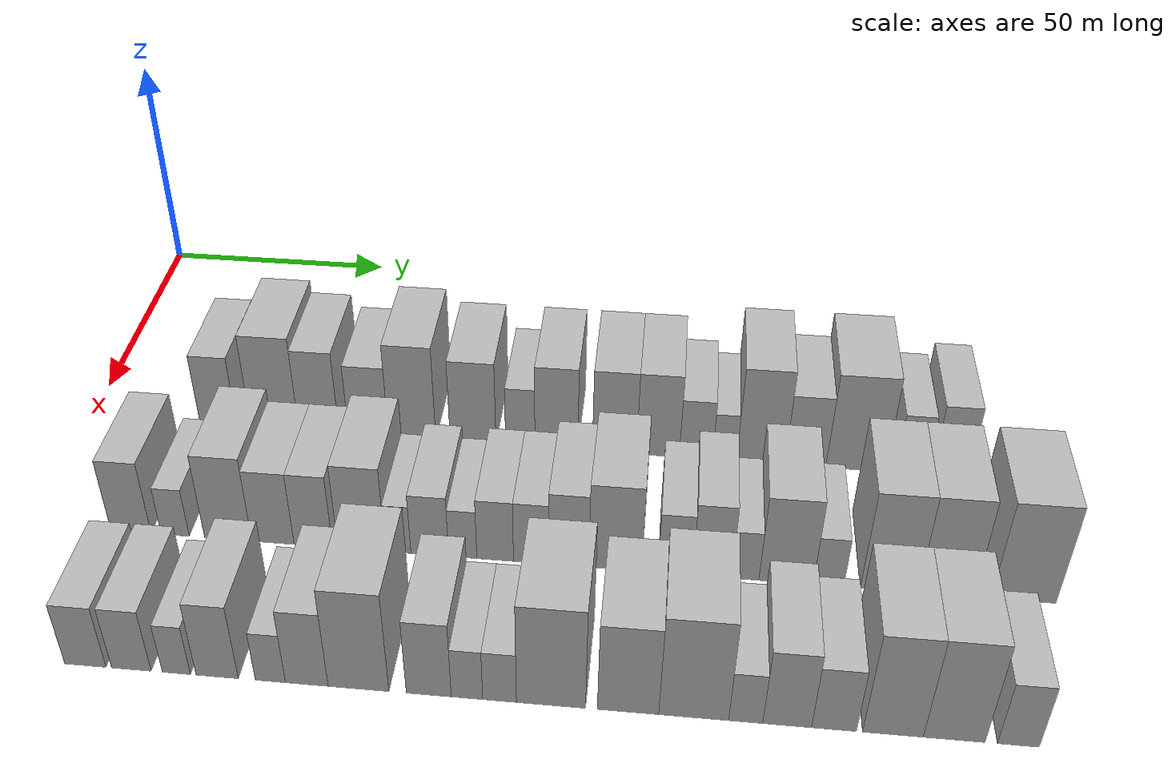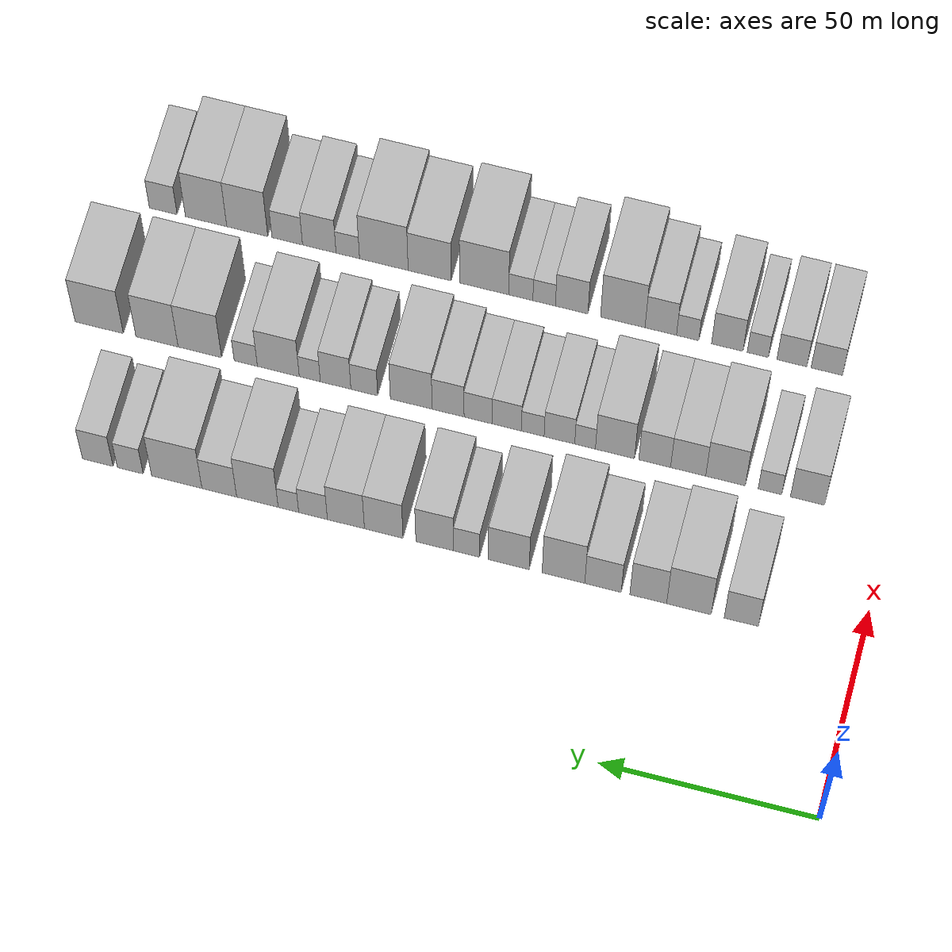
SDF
<sdf version="1.6">
 <world name="default">
  <model name="building_38">
   <static>1</static>
   <pose>50.0000 27.1432 0 0.000000 0.000000 0.000000</pose>
   <link name="link">
    <pose>0 0 9.00 0 0 0</pose>
    <collision name="collision"><geometry><box><size>20.0000 7.8603 18.0000</size></box></geometry></collision>
    <visual name="visual">
     <cast_shadows>0</cast_shadows>
     <geometry><box><size>20.0000 7.8603 18.0000</size></box></geometry>
     <material>
      <script>
       <uri>model://HANNAS_wall/materials/scripts</uri>
       <uri>model://HANNAS_wall/materials/textures</uri>
       <name>vrc/HANNAS_wall</name>
      </script>
     </material>
    </visual>
   </link>
  </model>
  <model name="building_39">
   <static>1</static>
   <pose>50.0000 39.2020 0 0.000000 0.000000 0.000000</pose>
   <link name="link">
    <pose>0 0 12.00 0 0 0</pose>
    <collision name="collision"><geometry><box><size>20.0000 10.2574 24.0000</size></box></geometry></collision>
    <visual name="visual">
     <cast_shadows>0</cast_shadows>
     <geometry><box><size>20.0000 10.2574 24.0000</size></box></geometry>
     <material>
      <script>
       <uri>model://HANNAS_wall/materials/scripts</uri>
       <uri>model://HANNAS_wall/materials/textures</uri>
       <name>vrc/HANNAS_wall</name>
      </script>
     </material>
    </visual>
   </link>
  </model>
  <model name="building_40">
   <static>1</static>
   <pose>50.0000 48.5770 0 0.000000 0.000000 0.000000</pose>
   <link name="link">
    <pose>0 0 10.50 0 0 0</pose>
    <collision name="collision"><geometry><box><size>20.0000 8.4925 21.0000</size></box></geometry></collision>
    <visual name="visual">
     <cast_shadows>0</cast_shadows>
     <geometry><box><size>20.0000 8.4925 21.0000</size></box></geometry>
     <material>
      <script>
       <uri>model://HANNAS_wall/materials/scripts</uri>
       <uri>model://HANNAS_wall/materials/textures</uri>
       <name>vrc/HANNAS_wall</name>
      </script>
     </material>
    </visual>
   </link>
  </model>
  <model name="building_41">
   <static>1</static>
   <pose>50.0000 59.0320 0 0.000000 0.000000 0.000000</pose>
   <link name="link">
    <pose>0 0 9.00 0 0 0</pose>
    <collision name="collision"><geometry><box><size>20.0000 8.4174 18.0000</size></box></geometry></collision>
    <visual name="visual">
     <cast_shadows>0</cast_shadows>
     <geometry><box><size>20.0000 8.4174 18.0000</size></box></geometry>
     <material>
      <script>
       <uri>model://HANNAS_wall/materials/scripts</uri>
       <uri>model://HANNAS_wall/materials/textures</uri>
       <name>vrc/HANNAS_wall</name>
      </script>
     </material>
    </visual>
   </link>
  </model>
  <model name="building_42">
   <static>1</static>
   <pose>50.0000 68.1837 0 0.000000 0.000000 0.000000</pose>
   <link name="link">
    <pose>0 0 12.00 0 0 0</pose>
    <collision name="collision"><geometry><box><size>20.0000 9.8862 24.0000</size></box></geometry></collision>
    <visual name="visual">
     <cast_shadows>0</cast_shadows>
     <geometry><box><size>20.0000 9.8862 24.0000</size></box></geometry>
     <material>
      <script>
       <uri>model://HANNAS_wall/materials/scripts</uri>
       <uri>model://HANNAS_wall/materials/textures</uri>
       <name>vrc/HANNAS_wall</name>
      </script>
     </material>
    </visual>
   </link>
  </model>
  <model name="building_43">
   <static>1</static>
   <pose>50.0000 80.8835 0 0.000000 0.000000 0.000000</pose>
   <link name="link">
    <pose>0 0 10.50 0 0 0</pose>
    <collision name="collision"><geometry><box><size>20.0000 9.5133 21.0000</size></box></geometry></collision>
    <visual name="visual">
     <cast_shadows>0</cast_shadows>
     <geometry><box><size>20.0000 9.5133 21.0000</size></box></geometry>
     <material>
      <script>
       <uri>model://HANNAS_wall/materials/scripts</uri>
       <uri>model://HANNAS_wall/materials/textures</uri>
       <name>vrc/HANNAS_wall</name>
      </script>
     </material>
    </visual>
   </link>
  </model>
  <model name="building_44">
   <static>1</static>
   <pose>50.0000 90.6628 0 0.000000 0.000000 0.000000</pose>
   <link name="link">
    <pose>0 0 7.50 0 0 0</pose>
    <collision name="collision"><geometry><box><size>20.0000 6.0455 15.0000</size></box></geometry></collision>
    <visual name="visual">
     <cast_shadows>0</cast_shadows>
     <geometry><box><size>20.0000 6.0455 15.0000</size></box></geometry>
     <material>
      <script>
       <uri>model://HANNAS_wall/materials/scripts</uri>
       <uri>model://HANNAS_wall/materials/textures</uri>
       <name>vrc/HANNAS_wall</name>
      </script>
     </material>
    </visual>
   </link>
  </model>
  <model name="building_45">
   <static>1</static>
   <pose>50.0000 98.0947 0 0.000000 0.000000 0.000000</pose>
   <link name="link">
    <pose>0 0 10.50 0 0 0</pose>
    <collision name="collision"><geometry><box><size>20.0000 8.8181 21.0000</size></box></geometry></collision>
    <visual name="visual">
     <cast_shadows>0</cast_shadows>
     <geometry><box><size>20.0000 8.8181 21.0000</size></box></geometry>
     <material>
      <script>
       <uri>model://HANNAS_wall/materials/scripts</uri>
       <uri>model://HANNAS_wall/materials/textures</uri>
       <name>vrc/HANNAS_wall</name>
      </script>
     </material>
    </visual>
   </link>
  </model>
  <model name="building_46">
   <static>1</static>
   <pose>50.0000 110.0140 0 0.000000 0.000000 0.000000</pose>
   <link name="link">
    <pose>0 0 10.50 0 0 0</pose>
    <collision name="collision"><geometry><box><size>20.0000 9.0205 21.0000</size></box></geometry></collision>
    <visual name="visual">
     <cast_shadows>0</cast_shadows>
     <geometry><box><size>20.0000 9.0205 21.0000</size></box></geometry>
     <material>
      <script>
       <uri>model://HANNAS_wall/materials/scripts</uri>
       <uri>model://HANNAS_wall/materials/textures</uri>
       <name>vrc/HANNAS_wall</name>
      </script>
     </material>
    </visual>
   </link>
  </model>
  <model name="building_47">
   <static>1</static>
   <pose>50.0000 118.8597 0 0.000000 0.000000 0.000000</pose>
   <link name="link">
    <pose>0 0 10.50 0 0 0</pose>
    <collision name="collision"><geometry><box><size>20.0000 8.6710 21.0000</size></box></geometry></collision>
    <visual name="visual">
     <cast_shadows>0</cast_shadows>
     <geometry><box><size>20.0000 8.6710 21.0000</size></box></geometry>
     <material>
      <script>
       <uri>model://HANNAS_wall/materials/scripts</uri>
       <uri>model://HANNAS_wall/materials/textures</uri>
       <name>vrc/HANNAS_wall</name>
      </script>
     </material>
    </visual>
   </link>
  </model>
  <model name="building_48">
   <static>1</static>
   <pose>50.0000 126.5667 0 0.000000 0.000000 0.000000</pose>
   <link name="link">
    <pose>0 0 7.50 0 0 0</pose>
    <collision name="collision"><geometry><box><size>20.0000 6.7429 15.0000</size></box></geometry></collision>
    <visual name="visual">
     <cast_shadows>0</cast_shadows>
     <geometry><box><size>20.0000 6.7429 15.0000</size></box></geometry>
     <material>
      <script>
       <uri>model://HANNAS_wall/materials/scripts</uri>
       <uri>model://HANNAS_wall/materials/textures</uri>
       <name>vrc/HANNAS_wall</name>
      </script>
     </material>
    </visual>
   </link>
  </model>
  <model name="building_49">
   <static>1</static>
   <pose>50.0000 132.3467 0 0.000000 0.000000 0.000000</pose>
   <link name="link">
    <pose>0 0 6.00 0 0 0</pose>
    <collision name="collision"><geometry><box><size>20.0000 4.8172 12.0000</size></box></geometry></collision>
    <visual name="visual">
     <cast_shadows>0</cast_shadows>
     <geometry><box><size>20.0000 4.8172 12.0000</size></box></geometry>
     <material>
      <script>
       <uri>model://HANNAS_wall/materials/scripts</uri>
       <uri>model://HANNAS_wall/materials/textures</uri>
       <name>vrc/HANNAS_wall</name>
      </script>
     </material>
    </visual>
   </link>
  </model>
  <model name="building_50">
   <static>1</static>
   <pose>50.0000 139.6357 0 0.000000 0.000000 0.000000</pose>
   <link name="link">
    <pose>0 0 12.00 0 0 0</pose>
    <collision name="collision"><geometry><box><size>20.0000 9.7607 24.0000</size></box></geometry></collision>
    <visual name="visual">
     <cast_shadows>0</cast_shadows>
     <geometry><box><size>20.0000 9.7607 24.0000</size></box></geometry>
     <material>
      <script>
       <uri>model://HANNAS_wall/materials/scripts</uri>
       <uri>model://HANNAS_wall/materials/textures</uri>
       <name>vrc/HANNAS_wall</name>
      </script>
     </material>
    </visual>
   </link>
  </model>
  <model name="building_51">
   <static>1</static>
   <pose>50.0000 148.6075 0 0.000000 0.000000 0.000000</pose>
   <link name="link">
    <pose>0 0 9.00 0 0 0</pose>
    <collision name="collision"><geometry><box><size>20.0000 8.1829 18.0000</size></box></geometry></collision>
    <visual name="visual">
     <cast_shadows>0</cast_shadows>
     <geometry><box><size>20.0000 8.1829 18.0000</size></box></geometry>
     <material>
      <script>
       <uri>model://HANNAS_wall/materials/scripts</uri>
       <uri>model://HANNAS_wall/materials/textures</uri>
       <name>vrc/HANNAS_wall</name>
      </script>
     </material>
    </visual>
   </link>
  </model>
  <model name="building_52">
   <static>1</static>
   <pose>50.0000 158.6310 0 0.000000 0.000000 0.000000</pose>
   <link name="link">
    <pose>0 0 12.00 0 0 0</pose>
    <collision name="collision"><geometry><box><size>20.0000 11.8640 24.0000</size></box></geometry></collision>
    <visual name="visual">
     <cast_shadows>0</cast_shadows>
     <geometry><box><size>20.0000 11.8640 24.0000</size></box></geometry>
     <material>
      <script>
       <uri>model://HANNAS_wall/materials/scripts</uri>
       <uri>model://HANNAS_wall/materials/textures</uri>
       <name>vrc/HANNAS_wall</name>
      </script>
     </material>
    </visual>
   </link>
  </model>
  <model name="building_53">
   <static>1</static>
   <pose>50.0000 169.6212 0 0.000000 0.000000 0.000000</pose>
   <link name="link">
    <pose>0 0 7.50 0 0 0</pose>
    <collision name="collision"><geometry><box><size>20.0000 6.1164 15.0000</size></box></geometry></collision>
    <visual name="visual">
     <cast_shadows>0</cast_shadows>
     <geometry><box><size>20.0000 6.1164 15.0000</size></box></geometry>
     <material>
      <script>
       <uri>model://HANNAS_wall/materials/scripts</uri>
       <uri>model://HANNAS_wall/materials/textures</uri>
       <name>vrc/HANNAS_wall</name>
      </script>
     </material>
    </visual>
   </link>
  </model>
  <model name="building_54">
   <static>1</static>
   <pose>50.0000 177.3063 0 0.000000 0.000000 0.000000</pose>
   <link name="link">
    <pose>0 0 9.00 0 0 0</pose>
    <collision name="collision"><geometry><box><size>20.0000 7.2539 18.0000</size></box></geometry></collision>
    <visual name="visual">
     <cast_shadows>0</cast_shadows>
     <geometry><box><size>20.0000 7.2539 18.0000</size></box></geometry>
     <material>
      <script>
       <uri>model://HANNAS_wall/materials/scripts</uri>
       <uri>model://HANNAS_wall/materials/textures</uri>
       <name>vrc/HANNAS_wall</name>
      </script>
     </material>
    </visual>
   </link>
  </model>
  <model name="building_107">
   <static>1</static>
   <pose>82.0000 19.3540 0 0.000000 0.000000 0.000000</pose>
   <link name="link">
    <pose>0 0 9.00 0 0 0</pose>
    <collision name="collision"><geometry><box><size>20.0000 7.9492 18.0000</size></box></geometry></collision>
    <visual name="visual">
     <cast_shadows>0</cast_shadows>
     <geometry><box><size>20.0000 7.9492 18.0000</size></box></geometry>
     <material>
      <script>
       <uri>model://HANNAS_wall/materials/scripts</uri>
       <uri>model://HANNAS_wall/materials/textures</uri>
       <name>vrc/HANNAS_wall</name>
      </script>
     </material>
    </visual>
   </link>
  </model>
  <model name="building_108">
   <static>1</static>
   <pose>82.0000 28.0753 0 0.000000 0.000000 0.000000</pose>
   <link name="link">
    <pose>0 0 6.00 0 0 0</pose>
    <collision name="collision"><geometry><box><size>20.0000 5.4935 12.0000</size></box></geometry></collision>
    <visual name="visual">
     <cast_shadows>0</cast_shadows>
     <geometry><box><size>20.0000 5.4935 12.0000</size></box></geometry>
     <material>
      <script>
       <uri>model://HANNAS_wall/materials/scripts</uri>
       <uri>model://HANNAS_wall/materials/textures</uri>
       <name>vrc/HANNAS_wall</name>
      </script>
     </material>
    </visual>
   </link>
  </model>
  <model name="building_109">
   <static>1</static>
   <pose>82.0000 38.4294 0 0.000000 0.000000 0.000000</pose>
   <link name="link">
    <pose>0 0 10.50 0 0 0</pose>
    <collision name="collision"><geometry><box><size>20.0000 9.2146 21.0000</size></box></geometry></collision>
    <visual name="visual">
     <cast_shadows>0</cast_shadows>
     <geometry><box><size>20.0000 9.2146 21.0000</size></box></geometry>
     <material>
      <script>
       <uri>model://HANNAS_wall/materials/scripts</uri>
       <uri>model://HANNAS_wall/materials/textures</uri>
       <name>vrc/HANNAS_wall</name>
      </script>
     </material>
    </visual>
   </link>
  </model>
  <model name="building_110">
   <static>1</static>
   <pose>82.0000 47.1405 0 0.000000 0.000000 0.000000</pose>
   <link name="link">
    <pose>0 0 9.00 0 0 0</pose>
    <collision name="collision"><geometry><box><size>20.0000 8.2077 18.0000</size></box></geometry></collision>
    <visual name="visual">
     <cast_shadows>0</cast_shadows>
     <geometry><box><size>20.0000 8.2077 18.0000</size></box></geometry>
     <material>
      <script>
       <uri>model://HANNAS_wall/materials/scripts</uri>
       <uri>model://HANNAS_wall/materials/textures</uri>
       <name>vrc/HANNAS_wall</name>
      </script>
     </material>
    </visual>
   </link>
  </model>
  <model name="building_111">
   <static>1</static>
   <pose>82.0000 54.9694 0 0.000000 0.000000 0.000000</pose>
   <link name="link">
    <pose>0 0 9.00 0 0 0</pose>
    <collision name="collision"><geometry><box><size>20.0000 7.4501 18.0000</size></box></geometry></collision>
    <visual name="visual">
     <cast_shadows>0</cast_shadows>
     <geometry><box><size>20.0000 7.4501 18.0000</size></box></geometry>
     <material>
      <script>
       <uri>model://HANNAS_wall/materials/scripts</uri>
       <uri>model://HANNAS_wall/materials/textures</uri>
       <name>vrc/HANNAS_wall</name>
      </script>
     </material>
    </visual>
   </link>
  </model>
  <model name="building_112">
   <static>1</static>
   <pose>82.0000 64.2688 0 0.000000 0.000000 0.000000</pose>
   <link name="link">
    <pose>0 0 10.50 0 0 0</pose>
    <collision name="collision"><geometry><box><size>20.0000 9.1488 21.0000</size></box></geometry></collision>
    <visual name="visual">
     <cast_shadows>0</cast_shadows>
     <geometry><box><size>20.0000 9.1488 21.0000</size></box></geometry>
     <material>
      <script>
       <uri>model://HANNAS_wall/materials/scripts</uri>
       <uri>model://HANNAS_wall/materials/textures</uri>
       <name>vrc/HANNAS_wall</name>
      </script>
     </material>
    </visual>
   </link>
  </model>
  <model name="building_113">
   <static>1</static>
   <pose>82.0000 71.2736 0 0.000000 0.000000 0.000000</pose>
   <link name="link">
    <pose>0 0 6.00 0 0 0</pose>
    <collision name="collision"><geometry><box><size>20.0000 4.8607 12.0000</size></box></geometry></collision>
    <visual name="visual">
     <cast_shadows>0</cast_shadows>
     <geometry><box><size>20.0000 4.8607 12.0000</size></box></geometry>
     <material>
      <script>
       <uri>model://HANNAS_wall/materials/scripts</uri>
       <uri>model://HANNAS_wall/materials/textures</uri>
       <name>vrc/HANNAS_wall</name>
      </script>
     </material>
    </visual>
   </link>
  </model>
  <model name="building_114">
   <static>1</static>
   <pose>82.0000 77.2960 0 0.000000 0.000000 0.000000</pose>
   <link name="link">
    <pose>0 0 7.50 0 0 0</pose>
    <collision name="collision"><geometry><box><size>20.0000 7.1841 15.0000</size></box></geometry></collision>
    <visual name="visual">
     <cast_shadows>0</cast_shadows>
     <geometry><box><size>20.0000 7.1841 15.0000</size></box></geometry>
     <material>
      <script>
       <uri>model://HANNAS_wall/materials/scripts</uri>
       <uri>model://HANNAS_wall/materials/textures</uri>
       <name>vrc/HANNAS_wall</name>
      </script>
     </material>
    </visual>
   </link>
  </model>
  <model name="building_115">
   <static>1</static>
   <pose>82.0000 83.5635 0 0.000000 0.000000 0.000000</pose>
   <link name="link">
    <pose>0 0 6.00 0 0 0</pose>
    <collision name="collision"><geometry><box><size>20.0000 5.3509 12.0000</size></box></geometry></collision>
    <visual name="visual">
     <cast_shadows>0</cast_shadows>
     <geometry><box><size>20.0000 5.3509 12.0000</size></box></geometry>
     <material>
      <script>
       <uri>model://HANNAS_wall/materials/scripts</uri>
       <uri>model://HANNAS_wall/materials/textures</uri>
       <name>vrc/HANNAS_wall</name>
      </script>
     </material>
    </visual>
   </link>
  </model>
  <model name="building_116">
   <static>1</static>
   <pose>82.0000 89.6961 0 0.000000 0.000000 0.000000</pose>
   <link name="link">
    <pose>0 0 7.50 0 0 0</pose>
    <collision name="collision"><geometry><box><size>20.0000 6.9144 15.0000</size></box></geometry></collision>
    <visual name="visual">
     <cast_shadows>0</cast_shadows>
     <geometry><box><size>20.0000 6.9144 15.0000</size></box></geometry>
     <material>
      <script>
       <uri>model://HANNAS_wall/materials/scripts</uri>
       <uri>model://HANNAS_wall/materials/textures</uri>
       <name>vrc/HANNAS_wall</name>
      </script>
     </material>
    </visual>
   </link>
  </model>
  <model name="building_117">
   <static>1</static>
   <pose>82.0000 96.4461 0 0.000000 0.000000 0.000000</pose>
   <link name="link">
    <pose>0 0 7.50 0 0 0</pose>
    <collision name="collision"><geometry><box><size>20.0000 6.5855 15.0000</size></box></geometry></collision>
    <visual name="visual">
     <cast_shadows>0</cast_shadows>
     <geometry><box><size>20.0000 6.5855 15.0000</size></box></geometry>
     <material>
      <script>
       <uri>model://HANNAS_wall/materials/scripts</uri>
       <uri>model://HANNAS_wall/materials/textures</uri>
       <name>vrc/HANNAS_wall</name>
      </script>
     </material>
    </visual>
   </link>
  </model>
  <model name="building_118">
   <static>1</static>
   <pose>82.0000 103.5116 0 0.000000 0.000000 0.000000</pose>
   <link name="link">
    <pose>0 0 9.00 0 0 0</pose>
    <collision name="collision"><geometry><box><size>20.0000 7.5455 18.0000</size></box></geometry></collision>
    <visual name="visual">
     <cast_shadows>0</cast_shadows>
     <geometry><box><size>20.0000 7.5455 18.0000</size></box></geometry>
     <material>
      <script>
       <uri>model://HANNAS_wall/materials/scripts</uri>
       <uri>model://HANNAS_wall/materials/textures</uri>
       <name>vrc/HANNAS_wall</name>
      </script>
     </material>
    </visual>
   </link>
  </model>
  <model name="building_119">
   <static>1</static>
   <pose>82.0000 112.2184 0 0.000000 0.000000 0.000000</pose>
   <link name="link">
    <pose>0 0 10.50 0 0 0</pose>
    <collision name="collision"><geometry><box><size>20.0000 9.8681 21.0000</size></box></geometry></collision>
    <visual name="visual">
     <cast_shadows>0</cast_shadows>
     <geometry><box><size>20.0000 9.8681 21.0000</size></box></geometry>
     <material>
      <script>
       <uri>model://HANNAS_wall/materials/scripts</uri>
       <uri>model://HANNAS_wall/materials/textures</uri>
       <name>vrc/HANNAS_wall</name>
      </script>
     </material>
    </visual>
   </link>
  </model>
  <model name="building_120">
   <static>1</static>
   <pose>82.0000 123.3333 0 0.000000 0.000000 0.000000</pose>
   <link name="link">
    <pose>0 0 7.50 0 0 0</pose>
    <collision name="collision"><geometry><box><size>20.0000 6.3617 15.0000</size></box></geometry></collision>
    <visual name="visual">
     <cast_shadows>0</cast_shadows>
     <geometry><box><size>20.0000 6.3617 15.0000</size></box></geometry>
     <material>
      <script>
       <uri>model://HANNAS_wall/materials/scripts</uri>
       <uri>model://HANNAS_wall/materials/textures</uri>
       <name>vrc/HANNAS_wall</name>
      </script>
     </material>
    </visual>
   </link>
  </model>
  <model name="building_121">
   <static>1</static>
   <pose>82.0000 130.1361 0 0.000000 0.000000 0.000000</pose>
   <link name="link">
    <pose>0 0 9.00 0 0 0</pose>
    <collision name="collision"><geometry><box><size>20.0000 7.2439 18.0000</size></box></geometry></collision>
    <visual name="visual">
     <cast_shadows>0</cast_shadows>
     <geometry><box><size>20.0000 7.2439 18.0000</size></box></geometry>
     <material>
      <script>
       <uri>model://HANNAS_wall/materials/scripts</uri>
       <uri>model://HANNAS_wall/materials/textures</uri>
       <name>vrc/HANNAS_wall</name>
      </script>
     </material>
    </visual>
   </link>
  </model>
  <model name="building_122">
   <static>1</static>
   <pose>82.0000 136.2627 0 0.000000 0.000000 0.000000</pose>
   <link name="link">
    <pose>0 0 6.00 0 0 0</pose>
    <collision name="collision"><geometry><box><size>20.0000 5.0094 12.0000</size></box></geometry></collision>
    <visual name="visual">
     <cast_shadows>0</cast_shadows>
     <geometry><box><size>20.0000 5.0094 12.0000</size></box></geometry>
     <material>
      <script>
       <uri>model://HANNAS_wall/materials/scripts</uri>
       <uri>model://HANNAS_wall/materials/textures</uri>
       <name>vrc/HANNAS_wall</name>
      </script>
     </material>
    </visual>
   </link>
  </model>
  <model name="building_123">
   <static>1</static>
   <pose>82.0000 143.7475 0 0.000000 0.000000 0.000000</pose>
   <link name="link">
    <pose>0 0 10.50 0 0 0</pose>
    <collision name="collision"><geometry><box><size>20.0000 9.9603 21.0000</size></box></geometry></collision>
    <visual name="visual">
     <cast_shadows>0</cast_shadows>
     <geometry><box><size>20.0000 9.9603 21.0000</size></box></geometry>
     <material>
      <script>
       <uri>model://HANNAS_wall/materials/scripts</uri>
       <uri>model://HANNAS_wall/materials/textures</uri>
       <name>vrc/HANNAS_wall</name>
      </script>
     </material>
    </visual>
   </link>
  </model>
  <model name="building_124">
   <static>1</static>
   <pose>82.0000 151.4983 0 0.000000 0.000000 0.000000</pose>
   <link name="link">
    <pose>0 0 6.00 0 0 0</pose>
    <collision name="collision"><geometry><box><size>20.0000 5.5413 12.0000</size></box></geometry></collision>
    <visual name="visual">
     <cast_shadows>0</cast_shadows>
     <geometry><box><size>20.0000 5.5413 12.0000</size></box></geometry>
     <material>
      <script>
       <uri>model://HANNAS_wall/materials/scripts</uri>
       <uri>model://HANNAS_wall/materials/textures</uri>
       <name>vrc/HANNAS_wall</name>
      </script>
     </material>
    </visual>
   </link>
  </model>
  <model name="building_125">
   <static>1</static>
   <pose>82.0000 162.4654 0 0.000000 0.000000 0.000000</pose>
   <link name="link">
    <pose>0 0 12.00 0 0 0</pose>
    <collision name="collision"><geometry><box><size>20.0000 10.3928 24.0000</size></box></geometry></collision>
    <visual name="visual">
     <cast_shadows>0</cast_shadows>
     <geometry><box><size>20.0000 10.3928 24.0000</size></box></geometry>
     <material>
      <script>
       <uri>model://HANNAS_wall/materials/scripts</uri>
       <uri>model://HANNAS_wall/materials/textures</uri>
       <name>vrc/HANNAS_wall</name>
      </script>
     </material>
    </visual>
   </link>
  </model>
  <model name="building_126">
   <static>1</static>
   <pose>82.0000 172.7138 0 0.000000 0.000000 0.000000</pose>
   <link name="link">
    <pose>0 0 12.00 0 0 0</pose>
    <collision name="collision"><geometry><box><size>20.0000 10.1041 24.0000</size></box></geometry></collision>
    <visual name="visual">
     <cast_shadows>0</cast_shadows>
     <geometry><box><size>20.0000 10.1041 24.0000</size></box></geometry>
     <material>
      <script>
       <uri>model://HANNAS_wall/materials/scripts</uri>
       <uri>model://HANNAS_wall/materials/textures</uri>
       <name>vrc/HANNAS_wall</name>
      </script>
     </material>
    </visual>
   </link>
  </model>
  <model name="building_127">
   <static>1</static>
   <pose>82.0000 186.5587 0 0.000000 0.000000 0.000000</pose>
   <link name="link">
    <pose>0 0 12.00 0 0 0</pose>
    <collision name="collision"><geometry><box><size>20.0000 11.5856 24.0000</size></box></geometry></collision>
    <visual name="visual">
     <cast_shadows>0</cast_shadows>
     <geometry><box><size>20.0000 11.5856 24.0000</size></box></geometry>
     <material>
      <script>
       <uri>model://HANNAS_wall/materials/scripts</uri>
       <uri>model://HANNAS_wall/materials/textures</uri>
       <name>vrc/HANNAS_wall</name>
      </script>
     </material>
    </visual>
   </link>
  </model>
  <model name="building_188">
   <static>1</static>
   <pose>114.0000 22.2365 0 0.000000 0.000000 0.000000</pose>
   <link name="link">
    <pose>0 0 7.50 0 0 0</pose>
    <collision name="collision"><geometry><box><size>20.0000 7.3695 15.0000</size></box></geometry></collision>
    <visual name="visual">
     <cast_shadows>0</cast_shadows>
     <geometry><box><size>20.0000 7.3695 15.0000</size></box></geometry>
     <material>
      <script>
       <uri>model://HANNAS_wall/materials/scripts</uri>
       <uri>model://HANNAS_wall/materials/textures</uri>
       <name>vrc/HANNAS_wall</name>
      </script>
     </material>
    </visual>
   </link>
  </model>
  <model name="building_189">
   <static>1</static>
   <pose>114.0000 30.4469 0 0.000000 0.000000 0.000000</pose>
   <link name="link">
    <pose>0 0 7.50 0 0 0</pose>
    <collision name="collision"><geometry><box><size>20.0000 7.0515 15.0000</size></box></geometry></collision>
    <visual name="visual">
     <cast_shadows>0</cast_shadows>
     <geometry><box><size>20.0000 7.0515 15.0000</size></box></geometry>
     <material>
      <script>
       <uri>model://HANNAS_wall/materials/scripts</uri>
       <uri>model://HANNAS_wall/materials/textures</uri>
       <name>vrc/HANNAS_wall</name>
      </script>
     </material>
    </visual>
   </link>
  </model>
  <model name="building_190">
   <static>1</static>
   <pose>114.0000 38.4668 0 0.000000 0.000000 0.000000</pose>
   <link name="link">
    <pose>0 0 6.00 0 0 0</pose>
    <collision name="collision"><geometry><box><size>20.0000 4.9883 12.0000</size></box></geometry></collision>
    <visual name="visual">
     <cast_shadows>0</cast_shadows>
     <geometry><box><size>20.0000 4.9883 12.0000</size></box></geometry>
     <material>
      <script>
       <uri>model://HANNAS_wall/materials/scripts</uri>
       <uri>model://HANNAS_wall/materials/textures</uri>
       <name>vrc/HANNAS_wall</name>
      </script>
     </material>
    </visual>
   </link>
  </model>
  <model name="building_191">
   <static>1</static>
   <pose>114.0000 45.6830 0 0.000000 0.000000 0.000000</pose>
   <link name="link">
    <pose>0 0 9.00 0 0 0</pose>
    <collision name="collision"><geometry><box><size>20.0000 7.4439 18.0000</size></box></geometry></collision>
    <visual name="visual">
     <cast_shadows>0</cast_shadows>
     <geometry><box><size>20.0000 7.4439 18.0000</size></box></geometry>
     <material>
      <script>
       <uri>model://HANNAS_wall/materials/scripts</uri>
       <uri>model://HANNAS_wall/materials/textures</uri>
       <name>vrc/HANNAS_wall</name>
      </script>
     </material>
    </visual>
   </link>
  </model>
  <model name="building_192">
   <static>1</static>
   <pose>114.0000 55.0447 0 0.000000 0.000000 0.000000</pose>
   <link name="link">
    <pose>0 0 6.00 0 0 0</pose>
    <collision name="collision"><geometry><box><size>20.0000 5.2796 12.0000</size></box></geometry></collision>
    <visual name="visual">
     <cast_shadows>0</cast_shadows>
     <geometry><box><size>20.0000 5.2796 12.0000</size></box></geometry>
     <material>
      <script>
       <uri>model://HANNAS_wall/materials/scripts</uri>
       <uri>model://HANNAS_wall/materials/textures</uri>
       <name>vrc/HANNAS_wall</name>
      </script>
     </material>
    </visual>
   </link>
  </model>
  <model name="building_193">
   <static>1</static>
   <pose>114.0000 61.4135 0 0.000000 0.000000 0.000000</pose>
   <link name="link">
    <pose>0 0 9.00 0 0 0</pose>
    <collision name="collision"><geometry><box><size>20.0000 7.4579 18.0000</size></box></geometry></collision>
    <visual name="visual">
     <cast_shadows>0</cast_shadows>
     <geometry><box><size>20.0000 7.4579 18.0000</size></box></geometry>
     <material>
      <script>
       <uri>model://HANNAS_wall/materials/scripts</uri>
       <uri>model://HANNAS_wall/materials/textures</uri>
       <name>vrc/HANNAS_wall</name>
      </script>
     </material>
    </visual>
   </link>
  </model>
  <model name="building_194">
   <static>1</static>
   <pose>114.0000 70.4148 0 0.000000 0.000000 0.000000</pose>
   <link name="link">
    <pose>0 0 12.00 0 0 0</pose>
    <collision name="collision"><geometry><box><size>20.0000 10.5447 24.0000</size></box></geometry></collision>
    <visual name="visual">
     <cast_shadows>0</cast_shadows>
     <geometry><box><size>20.0000 10.5447 24.0000</size></box></geometry>
     <material>
      <script>
       <uri>model://HANNAS_wall/materials/scripts</uri>
       <uri>model://HANNAS_wall/materials/textures</uri>
       <name>vrc/HANNAS_wall</name>
      </script>
     </material>
    </visual>
   </link>
  </model>
  <model name="building_195">
   <static>1</static>
   <pose>114.0000 82.5538 0 0.000000 0.000000 0.000000</pose>
   <link name="link">
    <pose>0 0 9.00 0 0 0</pose>
    <collision name="collision"><geometry><box><size>20.0000 7.7333 18.0000</size></box></geometry></collision>
    <visual name="visual">
     <cast_shadows>0</cast_shadows>
     <geometry><box><size>20.0000 7.7333 18.0000</size></box></geometry>
     <material>
      <script>
       <uri>model://HANNAS_wall/materials/scripts</uri>
       <uri>model://HANNAS_wall/materials/textures</uri>
       <name>vrc/HANNAS_wall</name>
      </script>
     </material>
    </visual>
   </link>
  </model>
  <model name="building_196">
   <static>1</static>
   <pose>114.0000 89.1071 0 0.000000 0.000000 0.000000</pose>
   <link name="link">
    <pose>0 0 6.00 0 0 0</pose>
    <collision name="collision"><geometry><box><size>20.0000 5.3734 12.0000</size></box></geometry></collision>
    <visual name="visual">
     <cast_shadows>0</cast_shadows>
     <geometry><box><size>20.0000 5.3734 12.0000</size></box></geometry>
     <material>
      <script>
       <uri>model://HANNAS_wall/materials/scripts</uri>
       <uri>model://HANNAS_wall/materials/textures</uri>
       <name>vrc/HANNAS_wall</name>
      </script>
     </material>
    </visual>
   </link>
  </model>
  <model name="building_197">
   <static>1</static>
   <pose>114.0000 94.6709 0 0.000000 0.000000 0.000000</pose>
   <link name="link">
    <pose>0 0 6.00 0 0 0</pose>
    <collision name="collision"><geometry><box><size>20.0000 5.7541 12.0000</size></box></geometry></collision>
    <visual name="visual">
     <cast_shadows>0</cast_shadows>
     <geometry><box><size>20.0000 5.7541 12.0000</size></box></geometry>
     <material>
      <script>
       <uri>model://HANNAS_wall/materials/scripts</uri>
       <uri>model://HANNAS_wall/materials/textures</uri>
       <name>vrc/HANNAS_wall</name>
      </script>
     </material>
    </visual>
   </link>
  </model>
  <model name="building_198">
   <static>1</static>
   <pose>114.0000 103.4113 0 0.000000 0.000000 0.000000</pose>
   <link name="link">
    <pose>0 0 12.00 0 0 0</pose>
    <collision name="collision"><geometry><box><size>20.0000 11.7267 24.0000</size></box></geometry></collision>
    <visual name="visual">
     <cast_shadows>0</cast_shadows>
     <geometry><box><size>20.0000 11.7267 24.0000</size></box></geometry>
     <material>
      <script>
       <uri>model://HANNAS_wall/materials/scripts</uri>
       <uri>model://HANNAS_wall/materials/textures</uri>
       <name>vrc/HANNAS_wall</name>
      </script>
     </material>
    </visual>
   </link>
  </model>
  <model name="building_199">
   <static>1</static>
   <pose>114.0000 116.4253 0 0.000000 0.000000 0.000000</pose>
   <link name="link">
    <pose>0 0 10.50 0 0 0</pose>
    <collision name="collision"><geometry><box><size>20.0000 10.3013 21.0000</size></box></geometry></collision>
    <visual name="visual">
     <cast_shadows>0</cast_shadows>
     <geometry><box><size>20.0000 10.3013 21.0000</size></box></geometry>
     <material>
      <script>
       <uri>model://HANNAS_wall/materials/scripts</uri>
       <uri>model://HANNAS_wall/materials/textures</uri>
       <name>vrc/HANNAS_wall</name>
      </script>
     </material>
    </visual>
   </link>
  </model>
  <model name="building_200">
   <static>1</static>
   <pose>114.0000 127.4101 0 0.000000 0.000000 0.000000</pose>
   <link name="link">
    <pose>0 0 12.00 0 0 0</pose>
    <collision name="collision"><geometry><box><size>20.0000 11.6683 24.0000</size></box></geometry></collision>
    <visual name="visual">
     <cast_shadows>0</cast_shadows>
     <geometry><box><size>20.0000 11.6683 24.0000</size></box></geometry>
     <material>
      <script>
       <uri>model://HANNAS_wall/materials/scripts</uri>
       <uri>model://HANNAS_wall/materials/textures</uri>
       <name>vrc/HANNAS_wall</name>
      </script>
     </material>
    </visual>
   </link>
  </model>
  <model name="building_201">
   <static>1</static>
   <pose>114.0000 136.0680 0 0.000000 0.000000 0.000000</pose>
   <link name="link">
    <pose>0 0 6.00 0 0 0</pose>
    <collision name="collision"><geometry><box><size>20.0000 5.6473 12.0000</size></box></geometry></collision>
    <visual name="visual">
     <cast_shadows>0</cast_shadows>
     <geometry><box><size>20.0000 5.6473 12.0000</size></box></geometry>
     <material>
      <script>
       <uri>model://HANNAS_wall/materials/scripts</uri>
       <uri>model://HANNAS_wall/materials/textures</uri>
       <name>vrc/HANNAS_wall</name>
      </script>
     </material>
    </visual>
   </link>
  </model>
  <model name="building_202">
   <static>1</static>
   <pose>114.0000 142.9263 0 0.000000 0.000000 0.000000</pose>
   <link name="link">
    <pose>0 0 9.00 0 0 0</pose>
    <collision name="collision"><geometry><box><size>20.0000 8.0694 18.0000</size></box></geometry></collision>
    <visual name="visual">
     <cast_shadows>0</cast_shadows>
     <geometry><box><size>20.0000 8.0694 18.0000</size></box></geometry>
     <material>
      <script>
       <uri>model://HANNAS_wall/materials/scripts</uri>
       <uri>model://HANNAS_wall/materials/textures</uri>
       <name>vrc/HANNAS_wall</name>
      </script>
     </material>
    </visual>
   </link>
  </model>
  <model name="building_203">
   <static>1</static>
   <pose>114.0000 150.6468 0 0.000000 0.000000 0.000000</pose>
   <link name="link">
    <pose>0 0 7.50 0 0 0</pose>
    <collision name="collision"><geometry><box><size>20.0000 7.3714 15.0000</size></box></geometry></collision>
    <visual name="visual">
     <cast_shadows>0</cast_shadows>
     <geometry><box><size>20.0000 7.3714 15.0000</size></box></geometry>
     <material>
      <script>
       <uri>model://HANNAS_wall/materials/scripts</uri>
       <uri>model://HANNAS_wall/materials/textures</uri>
       <name>vrc/HANNAS_wall</name>
      </script>
     </material>
    </visual>
   </link>
  </model>
  <model name="building_204">
   <static>1</static>
   <pose>114.0000 160.2800 0 0.000000 0.000000 0.000000</pose>
   <link name="link">
    <pose>0 0 12.00 0 0 0</pose>
    <collision name="collision"><geometry><box><size>20.0000 9.8951 24.0000</size></box></geometry></collision>
    <visual name="visual">
     <cast_shadows>0</cast_shadows>
     <geometry><box><size>20.0000 9.8951 24.0000</size></box></geometry>
     <material>
      <script>
       <uri>model://HANNAS_wall/materials/scripts</uri>
       <uri>model://HANNAS_wall/materials/textures</uri>
       <name>vrc/HANNAS_wall</name>
      </script>
     </material>
    </visual>
   </link>
  </model>
  <model name="building_205">
   <static>1</static>
   <pose>114.0000 170.2367 0 0.000000 0.000000 0.000000</pose>
   <link name="link">
    <pose>0 0 12.00 0 0 0</pose>
    <collision name="collision"><geometry><box><size>20.0000 10.0182 24.0000</size></box></geometry></collision>
    <visual name="visual">
     <cast_shadows>0</cast_shadows>
     <geometry><box><size>20.0000 10.0182 24.0000</size></box></geometry>
     <material>
      <script>
       <uri>model://HANNAS_wall/materials/scripts</uri>
       <uri>model://HANNAS_wall/materials/textures</uri>
       <name>vrc/HANNAS_wall</name>
      </script>
     </material>
    </visual>
   </link>
  </model>
  <model name="building_206">
   <static>1</static>
   <pose>114.0000 180.6024 0 0.000000 0.000000 0.000000</pose>
   <link name="link">
    <pose>0 0 7.50 0 0 0</pose>
    <collision name="collision"><geometry><box><size>20.0000 6.7132 15.0000</size></box></geometry></collision>
    <visual name="visual">
     <cast_shadows>0</cast_shadows>
     <geometry><box><size>20.0000 6.7132 15.0000</size></box></geometry>
     <material>
      <script>
       <uri>model://HANNAS_wall/materials/scripts</uri>
       <uri>model://HANNAS_wall/materials/textures</uri>
       <name>vrc/HANNAS_wall</name>
      </script>
     </material>
    </visual>
   </link>
  </model>
 </world>
</sdf>
